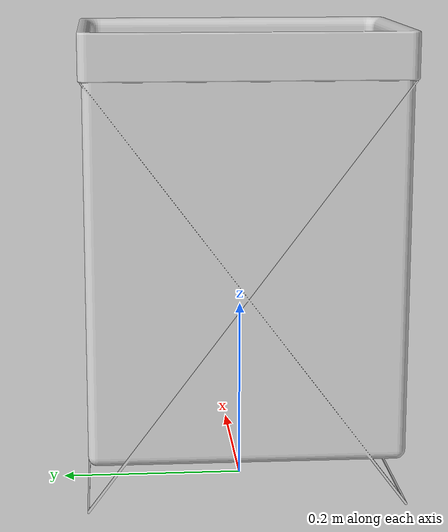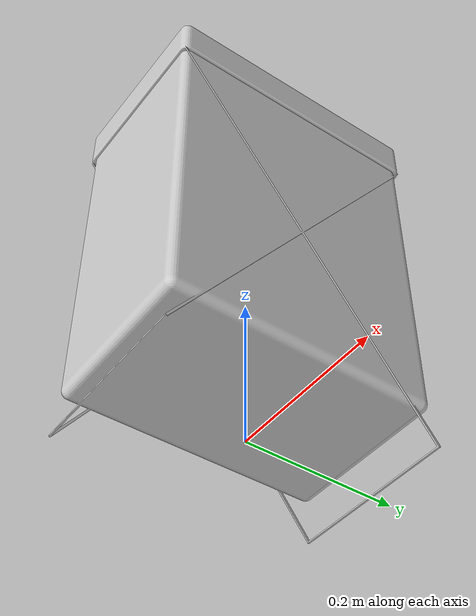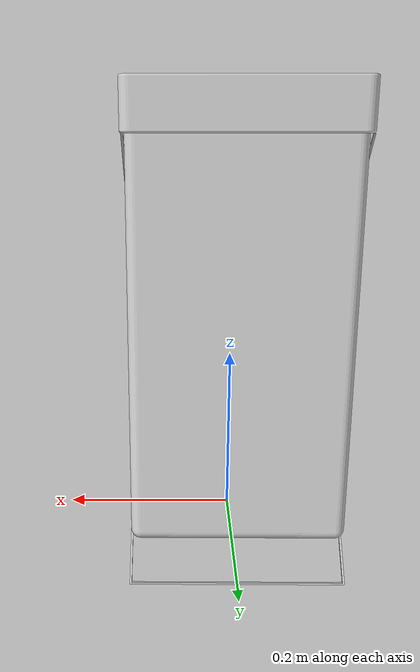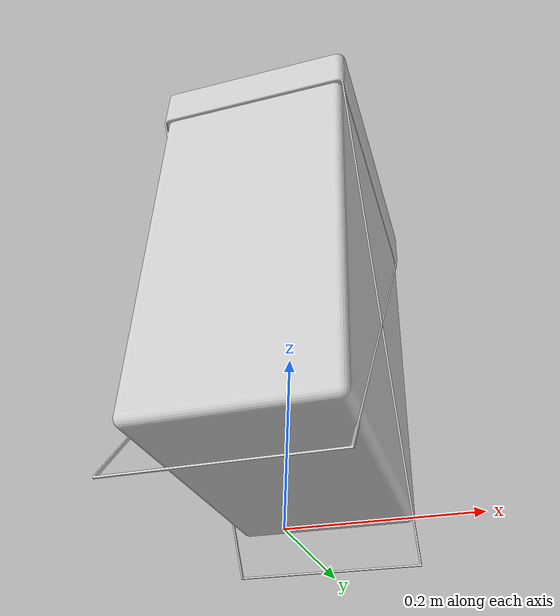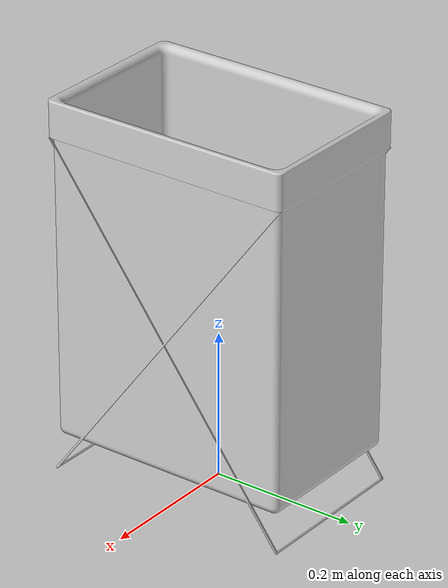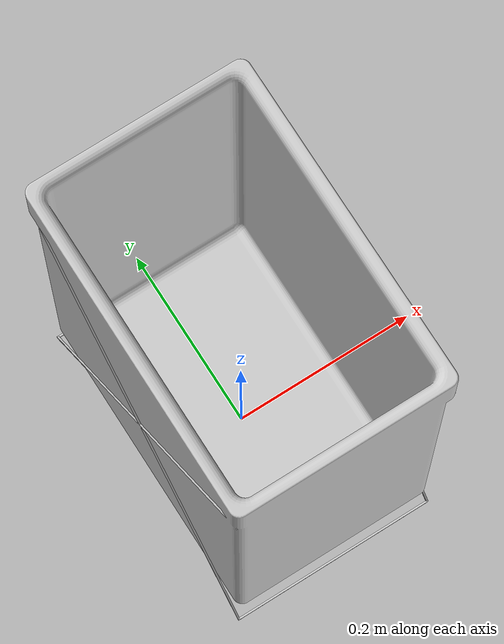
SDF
<?xml version="1.0" ?>

<sdf version="1.5">
  <model name="rgiro_astro_laundry_bag">
    <static>1</static>
    <link name="link">
      <visual name="visual">
        <geometry>
          <mesh>
            <uri>model://rgiro_astro_laundry_bag/meshes/rgiro_astro_laundry_bag.dae</uri>
          </mesh>
        </geometry>
      </visual>
      <collision name="collision">
        <geometry>
          <mesh>
            <uri>model://rgiro_astro_laundry_bag/meshes/rgiro_astro_laundry_bag.dae</uri>
          </mesh>
        </geometry>
      </collision>
    </link>
  </model>
</sdf>
